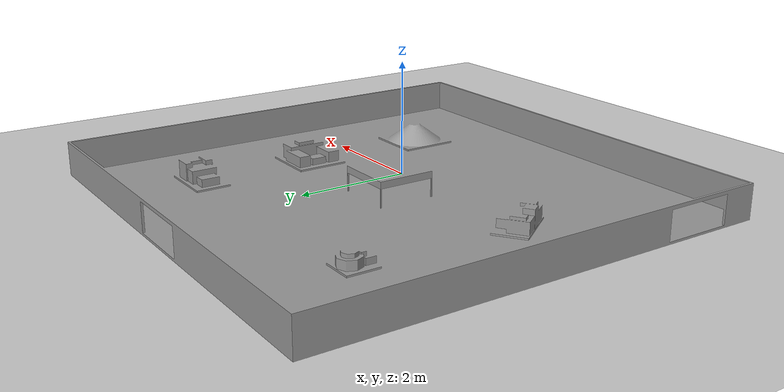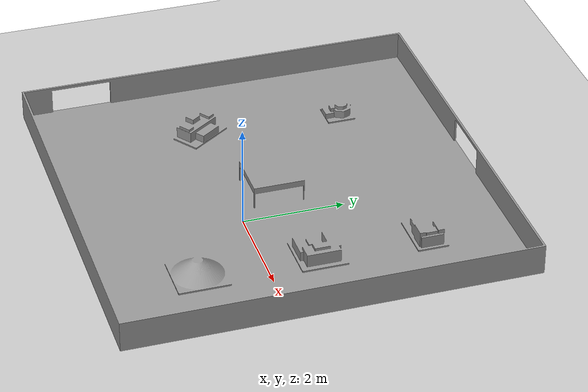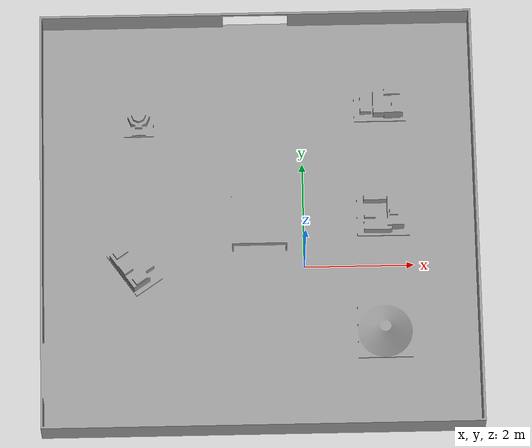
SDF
<?xml version="1.0" ?>
<sdf version="1.5">
  <world name="graduation_world">
    <!-- 动态光照与自然昼夜交替系统: 随着仿真时间推移，太阳角度、照度与阴影移动动态变化 -->
    <scene>
      <sky>
        <time>10.0</time>
        <sunrise>6.0</sunrise>
        <sunset>18.0</sunset>
        <clouds>
          <speed>12</speed>
        </clouds>
      </sky>
      <shadows>true</shadows>
    </scene>

    <!-- 太阳方向光源 -->
    <include>
      <uri>model://sun</uri>
    </include>

    <!-- 地平地面 -->
    <include>
      <uri>model://ground_plane</uri>
    </include>

    <!-- 物理引擎配置 -->
    <physics type='ode'>
      <max_step_size>0.001</max_step_size>
      <real_time_factor>1</real_time_factor>
      <real_time_update_rate>1000</real_time_update_rate>
      <gravity>0 0 -9.8</gravity>
    </physics>

    <!-- 加载 SolidWorks 毕设场景模型 -->
    <model name="graduation_scene">
      <static>true</static>
      <!-- 姿态配置: [x y z roll pitch yaw] -->
      <pose>-4.816 4.896 0 1.570796 0 0</pose>
      <link name="link">
        <visual name="visual">
          <geometry>
            <mesh>
              <uri>file:///home/zf/catkin_ws/src/limo_gazebo_sim/meshes/ROS1.STL</uri>
              <scale>2 2 2</scale>
            </mesh>
          </geometry>
          <material>
            <ambient>0.7 0.7 0.7 1</ambient>
            <diffuse>0.7 0.7 0.7 1</diffuse>
            <specular>0.1 0.1 0.1 1</specular>
            <script>
              <uri>file://media/materials/scripts/gazebo.material</uri>
              <name>Gazebo/Grey</name>
            </script>
          </material>
        </visual>
        <collision name="collision">
          <geometry>
            <mesh>
              <uri>file:///home/zf/catkin_ws/src/limo_gazebo_sim/meshes/ROS1.STL</uri>
              <scale>2 2 2</scale>
            </mesh>
          </geometry>
        </collision>
      </link>
    </model>
  </world>
</sdf>
